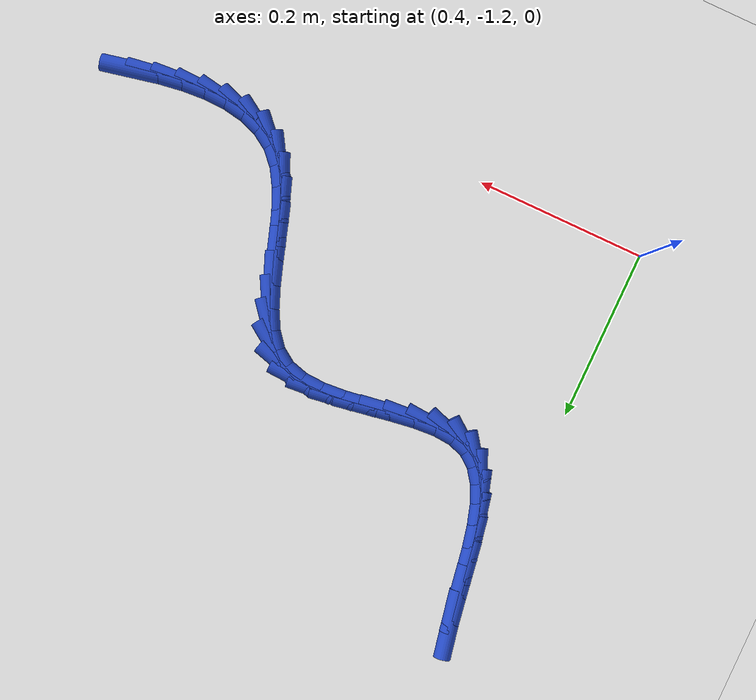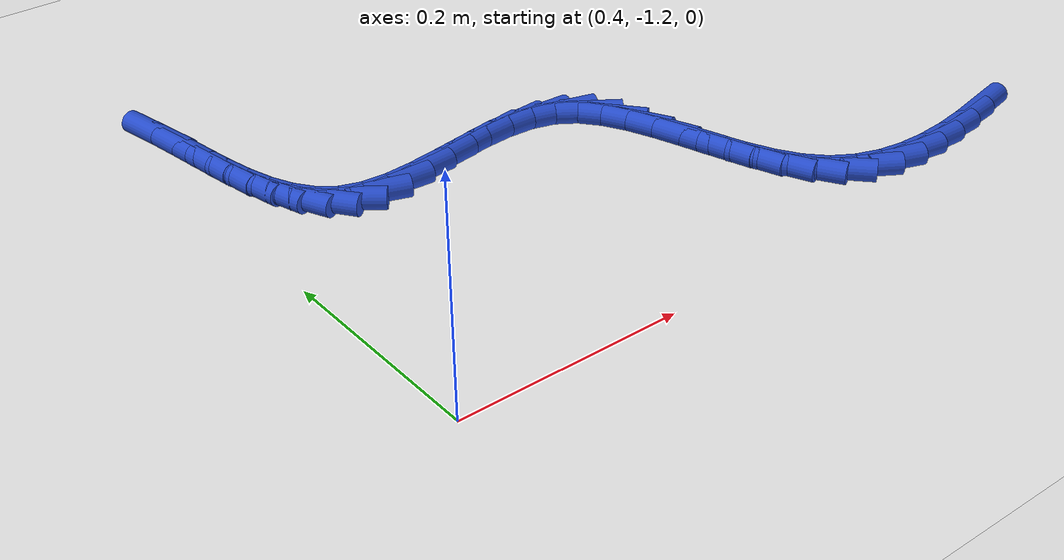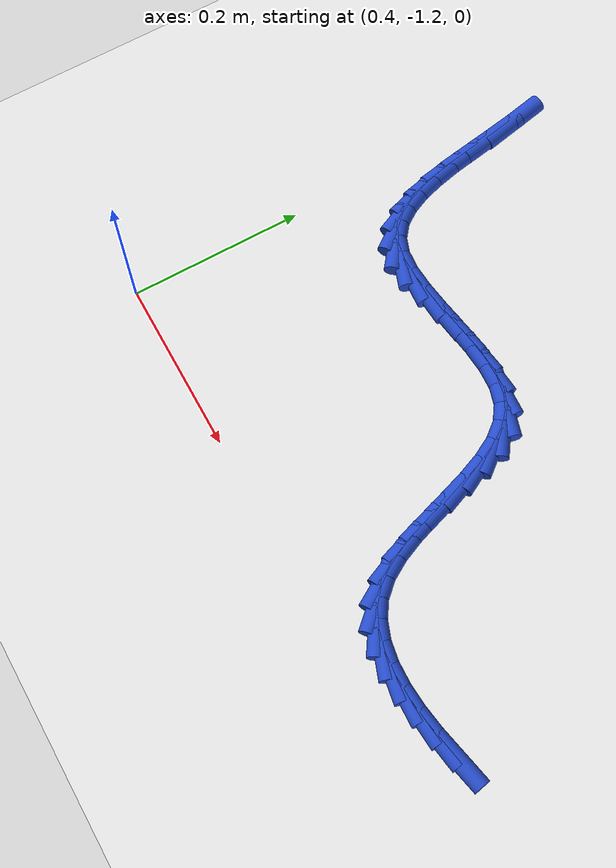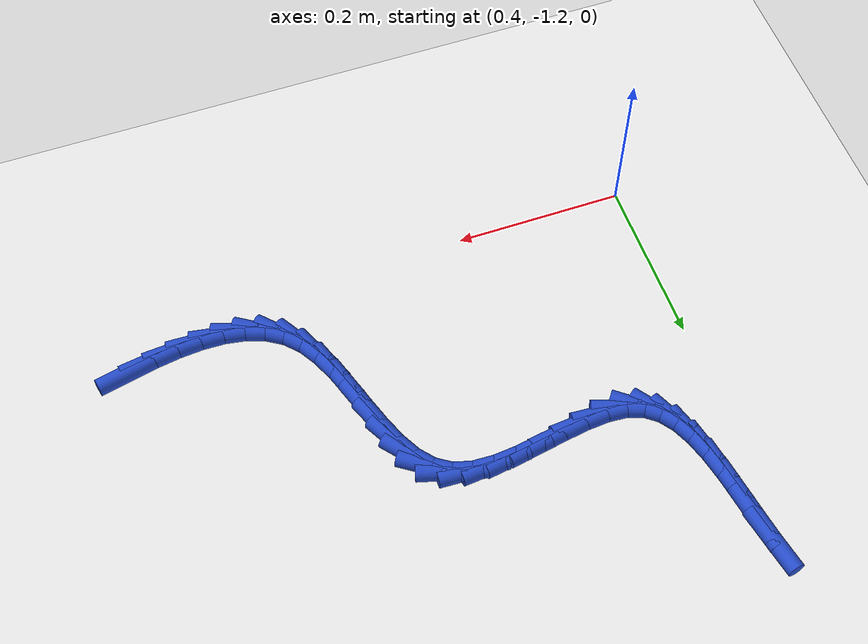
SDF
<sdf version="1.6">
 <world name="default">
  <model name="ground_plane">
   <static>1</static>
   <link name="link">
    <collision name="collision">
     <geometry><plane><normal>0 0 1</normal><size>100 100</size></plane></geometry>
     <surface><friction><ode><mu>100</mu><mu2>50</mu2></ode></friction></surface>
    </collision>
    <visual name="visual">
     <cast_shadows>0</cast_shadows>
     <geometry><plane><normal>0 0 1</normal><size>100 100</size></plane></geometry>
     <material>
      <script><uri>file://media/materials/scripts/gazebo.material</uri><name>Gazebo/WhiteGlow</name></script>
     </material>
    </visual>
   </link>
  </model>
  <model name="line">
   <link name="link_211">
    <pose>1.0106371908204403 -1.1491196145211096 0.01 0 1.57 0.2105865442659865</pose>
    <collision name="collision">
     <geometry><cylinder><radius>0.01</radius><length>0.08</length></cylinder></geometry>
    </collision>
    <visual name="visual">
     <material>
      <script><name>Gazebo/Blue</name><uri>file://media/materials/scripts/gazebo.material</uri></script>
     </material>
     <geometry><cylinder><radius>0.01</radius><length>0.08</length></cylinder></geometry>
    </visual>
   </link>
   <link name="link_212">
    <pose>0.9820281180655425 -1.155234967235178 0.01 0 1.57 0.1502433830271985</pose>
    <collision name="collision">
     <geometry><cylinder><radius>0.01</radius><length>0.08</length></cylinder></geometry>
    </collision>
    <visual name="visual">
     <material>
      <script><name>Gazebo/Blue</name><uri>file://media/materials/scripts/gazebo.material</uri></script>
     </material>
     <geometry><cylinder><radius>0.01</radius><length>0.08</length></cylinder></geometry>
    </visual>
   </link>
   <link name="link_213">
    <pose>0.9536405488422622 -1.159532395828081 0.01 0 1.57 0.07106828498928262</pose>
    <collision name="collision">
     <geometry><cylinder><radius>0.01</radius><length>0.08</length></cylinder></geometry>
    </collision>
    <visual name="visual">
     <material>
      <script><name>Gazebo/Blue</name><uri>file://media/materials/scripts/gazebo.material</uri></script>
     </material>
     <geometry><cylinder><radius>0.01</radius><length>0.08</length></cylinder></geometry>
    </visual>
   </link>
   <link name="link_214">
    <pose>0.925998610730409 -1.1615001749676097 0.01 0 1.57 -0.03311354392058998</pose>
    <collision name="collision">
     <geometry><cylinder><radius>0.01</radius><length>0.08</length></cylinder></geometry>
    </collision>
    <visual name="visual">
     <material>
      <script><name>Gazebo/Blue</name><uri>file://media/materials/scripts/gazebo.material</uri></script>
     </material>
     <geometry><cylinder><radius>0.01</radius><length>0.08</length></cylinder></geometry>
    </visual>
   </link>
   <link name="link_215">
    <pose>0.899626431309792 -1.1606265793215538 0.01 0 1.57 -0.17030288165418644</pose>
    <collision name="collision">
     <geometry><cylinder><radius>0.01</radius><length>0.08</length></cylinder></geometry>
    </collision>
    <visual name="visual">
     <material>
      <script><name>Gazebo/Blue</name><uri>file://media/materials/scripts/gazebo.material</uri></script>
     </material>
     <geometry><cylinder><radius>0.01</radius><length>0.08</length></cylinder></geometry>
    </visual>
   </link>
   <link name="link_216">
    <pose>0.8750481381602202 -1.1563998835577038 0.01 0 1.57 -0.3486469767944807</pose>
    <collision name="collision">
     <geometry><cylinder><radius>0.01</radius><length>0.08</length></cylinder></geometry>
    </collision>
    <visual name="visual">
     <material>
      <script><name>Gazebo/Blue</name><uri>file://media/materials/scripts/gazebo.material</uri></script>
     </material>
     <geometry><cylinder><radius>0.01</radius><length>0.08</length></cylinder></geometry>
    </visual>
   </link>
   <link name="link_217">
    <pose>0.8527878588615021 -1.1483083623438493 0.01 0 1.57 -0.5707900933685812</pose>
    <collision name="collision">
     <geometry><cylinder><radius>0.01</radius><length>0.08</length></cylinder></geometry>
    </collision>
    <visual name="visual">
     <material>
      <script><name>Gazebo/Blue</name><uri>file://media/materials/scripts/gazebo.material</uri></script>
     </material>
     <geometry><cylinder><radius>0.01</radius><length>0.08</length></cylinder></geometry>
    </visual>
   </link>
   <link name="link_218">
    <pose>0.8333697209934481 -1.1358402903477813 0.01 0 1.57 -0.8210833980769267</pose>
    <collision name="collision">
     <geometry><cylinder><radius>0.01</radius><length>0.08</length></cylinder></geometry>
    </collision>
    <visual name="visual">
     <material>
      <script><name>Gazebo/Blue</name><uri>file://media/materials/scripts/gazebo.material</uri></script>
     </material>
     <geometry><cylinder><radius>0.01</radius><length>0.08</length></cylinder></geometry>
    </visual>
   </link>
   <link name="link_219">
    <pose>0.8172688610228147 -1.1185472553007367 0.01 0 1.57 -1.0283760573147922</pose>
    <collision name="collision">
     <geometry><cylinder><radius>0.01</radius><length>0.08</length></cylinder></geometry>
    </collision>
    <visual name="visual">
     <material>
      <script><name>Gazebo/Blue</name><uri>file://media/materials/scripts/gazebo.material</uri></script>
     </material>
     <geometry><cylinder><radius>0.01</radius><length>0.08</length></cylinder></geometry>
    </visual>
   </link>
   <link name="link_220">
    <pose>0.8042336394577089 -1.0969200849208482 0.01 0 1.57 -1.160127191059161</pose>
    <collision name="collision">
     <geometry><cylinder><radius>0.01</radius><length>0.08</length></cylinder></geometry>
    </collision>
    <visual name="visual">
     <material>
      <script><name>Gazebo/Blue</name><uri>file://media/materials/scripts/gazebo.material</uri></script>
     </material>
     <geometry><cylinder><radius>0.01</radius><length>0.08</length></cylinder></geometry>
    </visual>
   </link>
   <link name="link_221">
    <pose>0.793456135936125 -1.0721685096787956 0.01 0 1.57 -1.233618984110951</pose>
    <collision name="collision">
     <geometry><cylinder><radius>0.01</radius><length>0.08</length></cylinder></geometry>
    </collision>
    <visual name="visual">
     <material>
      <script><name>Gazebo/Blue</name><uri>file://media/materials/scripts/gazebo.material</uri></script>
     </material>
     <geometry><cylinder><radius>0.01</radius><length>0.08</length></cylinder></geometry>
    </visual>
   </link>
   <link name="link_222">
    <pose>0.7841143038243747 -1.0455205159590237 0.01 0 1.57 -1.2615267652208146</pose>
    <collision name="collision">
     <geometry><cylinder><radius>0.01</radius><length>0.08</length></cylinder></geometry>
    </collision>
    <visual name="visual">
     <material>
      <script><name>Gazebo/Blue</name><uri>file://media/materials/scripts/gazebo.material</uri></script>
     </material>
     <geometry><cylinder><radius>0.01</radius><length>0.08</length></cylinder></geometry>
    </visual>
   </link>
   <link name="link_223">
    <pose>0.7753860964887707 -1.0182040901459786 0.01 0 1.57 -1.2484514703092118</pose>
    <collision name="collision">
     <geometry><cylinder><radius>0.01</radius><length>0.08</length></cylinder></geometry>
    </collision>
    <visual name="visual">
     <material>
      <script><name>Gazebo/Blue</name><uri>file://media/materials/scripts/gazebo.material</uri></script>
     </material>
     <geometry><cylinder><radius>0.01</radius><length>0.08</length></cylinder></geometry>
    </visual>
   </link>
   <link name="link_224">
    <pose>0.7664494672956247 -0.9914472186241059 0.01 0 1.57 -1.1910025663956747</pose>
    <collision name="collision">
     <geometry><cylinder><radius>0.01</radius><length>0.08</length></cylinder></geometry>
    </collision>
    <visual name="visual">
     <material>
      <script><name>Gazebo/Blue</name><uri>file://media/materials/scripts/gazebo.material</uri></script>
     </material>
     <geometry><cylinder><radius>0.01</radius><length>0.08</length></cylinder></geometry>
    </visual>
   </link>
   <link name="link_225">
    <pose>0.7564823696112495 -0.9664778877778516 0.01 0 1.57 -1.0769137946612617</pose>
    <collision name="collision">
     <geometry><cylinder><radius>0.01</radius><length>0.08</length></cylinder></geometry>
    </collision>
    <visual name="visual">
     <material>
      <script><name>Gazebo/Blue</name><uri>file://media/materials/scripts/gazebo.material</uri></script>
     </material>
     <geometry><cylinder><radius>0.01</radius><length>0.08</length></cylinder></geometry>
    </visual>
   </link>
   <link name="link_226">
    <pose>0.7446627568019566 -0.9445240839916605 0.01 0 1.57 -0.8849336698834042</pose>
    <collision name="collision">
     <geometry><cylinder><radius>0.01</radius><length>0.08</length></cylinder></geometry>
    </collision>
    <visual name="visual">
     <material>
      <script><name>Gazebo/Blue</name><uri>file://media/materials/scripts/gazebo.material</uri></script>
     </material>
     <geometry><cylinder><radius>0.01</radius><length>0.08</length></cylinder></geometry>
    </visual>
   </link>
   <link name="link_227">
    <pose>0.7301685822340588 -0.9268137936499797 0.01 0 1.57 -0.59743381380134</pose>
    <collision name="collision">
     <geometry><cylinder><radius>0.01</radius><length>0.08</length></cylinder></geometry>
    </collision>
    <visual name="visual">
     <material>
      <script><name>Gazebo/Blue</name><uri>file://media/materials/scripts/gazebo.material</uri></script>
     </material>
     <geometry><cylinder><radius>0.01</radius><length>0.08</length></cylinder></geometry>
    </visual>
   </link>
   <link name="link_228">
    <pose>0.7121785914218395 -0.9145738333172274 0.01 0 1.57 -0.2758506275479305</pose>
    <collision name="collision">
     <geometry><cylinder><radius>0.01</radius><length>0.08</length></cylinder></geometry>
    </collision>
    <visual name="visual">
     <material>
      <script><name>Gazebo/Blue</name><uri>file://media/materials/scripts/gazebo.material</uri></script>
     </material>
     <geometry><cylinder><radius>0.01</radius><length>0.08</length></cylinder></geometry>
    </visual>
   </link>
   <link name="link_229">
    <pose>0.6903099701192649 -0.908383544348696 0.01 0 1.57 -0.05133355496266097</pose>
    <collision name="collision">
     <geometry><cylinder><radius>0.01</radius><length>0.08</length></cylinder></geometry>
    </collision>
    <visual name="visual">
     <material>
      <script><name>Gazebo/Blue</name><uri>file://media/materials/scripts/gazebo.material</uri></script>
     </material>
     <geometry><cylinder><radius>0.01</radius><length>0.08</length></cylinder></geometry>
    </visual>
   </link>
   <link name="link_230">
    <pose>0.6653455320610968 -0.907100904154681 0.01 0 1.57 0.08104856240477121</pose>
    <collision name="collision">
     <geometry><cylinder><radius>0.01</radius><length>0.08</length></cylinder></geometry>
    </collision>
    <visual name="visual">
     <material>
      <script><name>Gazebo/Blue</name><uri>file://media/materials/scripts/gazebo.material</uri></script>
     </material>
     <geometry><cylinder><radius>0.01</radius><length>0.08</length></cylinder></geometry>
    </visual>
   </link>
   <link name="link_231">
    <pose>0.6382596544254131 -0.9093009950795247 0.01 0 1.57 0.14968530905457822</pose>
    <collision name="collision">
     <geometry><cylinder><radius>0.01</radius><length>0.08</length></cylinder></geometry>
    </collision>
    <visual name="visual">
     <material>
      <script><name>Gazebo/Blue</name><uri>file://media/materials/scripts/gazebo.material</uri></script>
     </material>
     <geometry><cylinder><radius>0.01</radius><length>0.08</length></cylinder></geometry>
    </visual>
   </link>
   <link name="link_232">
    <pose>0.6100267143902914 -0.9135588994675684 0.01 0 1.57 0.1705054111101277</pose>
    <collision name="collision">
     <geometry><cylinder><radius>0.01</radius><length>0.08</length></cylinder></geometry>
    </collision>
    <visual name="visual">
     <material>
      <script><name>Gazebo/Blue</name><uri>file://media/materials/scripts/gazebo.material</uri></script>
     </material>
     <geometry><cylinder><radius>0.01</radius><length>0.08</length></cylinder></geometry>
    </visual>
   </link>
   <link name="link_233">
    <pose>0.5816210891338099 -0.9184496996631542 0.01 0 1.57 0.14740825133236912</pose>
    <collision name="collision">
     <geometry><cylinder><radius>0.01</radius><length>0.08</length></cylinder></geometry>
    </collision>
    <visual name="visual">
     <material>
      <script><name>Gazebo/Blue</name><uri>file://media/materials/scripts/gazebo.material</uri></script>
     </material>
     <geometry><cylinder><radius>0.01</radius><length>0.08</length></cylinder></geometry>
    </visual>
   </link>
   <link name="link_234">
    <pose>0.5540171558340452 -0.9225484780106237 0.01 0 1.57 0.07273227711157854</pose>
    <collision name="collision">
     <geometry><cylinder><radius>0.01</radius><length>0.08</length></cylinder></geometry>
    </collision>
    <visual name="visual">
     <material>
      <script><name>Gazebo/Blue</name><uri>file://media/materials/scripts/gazebo.material</uri></script>
     </material>
     <geometry><cylinder><radius>0.01</radius><length>0.08</length></cylinder></geometry>
    </visual>
   </link>
   <link name="link_235">
    <pose>0.5281892916690774 -0.9244303168543188 0.01 0 1.57 -0.07611847297497897</pose>
    <collision name="collision">
     <geometry><cylinder><radius>0.01</radius><length>0.08</length></cylinder></geometry>
    </collision>
    <visual name="visual">
     <material>
      <script><name>Gazebo/Blue</name><uri>file://media/materials/scripts/gazebo.material</uri></script>
     </material>
     <geometry><cylinder><radius>0.01</radius><length>0.08</length></cylinder></geometry>
    </visual>
   </link>
   <link name="link_236">
    <pose>0.5051118738169832 -0.9226702985385812 0.01 0 1.57 -0.3365311992217344</pose>
    <collision name="collision">
     <geometry><cylinder><radius>0.01</radius><length>0.08</length></cylinder></geometry>
    </collision>
    <visual name="visual">
     <material>
      <script><name>Gazebo/Blue</name><uri>file://media/materials/scripts/gazebo.material</uri></script>
     </material>
     <geometry><cylinder><radius>0.01</radius><length>0.08</length></cylinder></geometry>
    </visual>
   </link>
   <link name="link_237">
    <pose>0.48572634918984525 -0.9158884899729126 0.01 0 1.57 -0.6646461387228294</pose>
    <collision name="collision">
     <geometry><cylinder><radius>0.01</radius><length>0.08</length></cylinder></geometry>
    </collision>
    <visual name="visual">
     <material>
      <script><name>Gazebo/Blue</name><uri>file://media/materials/scripts/gazebo.material</uri></script>
     </material>
     <geometry><cylinder><radius>0.01</radius><length>0.08</length></cylinder></geometry>
    </visual>
   </link>
   <link name="link_238">
    <pose>0.47021865610935587 -0.9037370245985061 0.01 0 1.57 -0.943854965446447</pose>
    <collision name="collision">
     <geometry><cylinder><radius>0.01</radius><length>0.08</length></cylinder></geometry>
    </collision>
    <visual name="visual">
     <material>
      <script><name>Gazebo/Blue</name><uri>file://media/materials/scripts/gazebo.material</uri></script>
     </material>
     <geometry><cylinder><radius>0.01</radius><length>0.08</length></cylinder></geometry>
    </visual>
   </link>
   <link name="link_239">
    <pose>0.4580202714477693 -0.8868986719357754 0.01 0 1.57 -1.1427038715775433</pose>
    <collision name="collision">
     <geometry><cylinder><radius>0.01</radius><length>0.08</length></cylinder></geometry>
    </collision>
    <visual name="visual">
     <material>
      <script><name>Gazebo/Blue</name><uri>file://media/materials/scripts/gazebo.material</uri></script>
     </material>
     <geometry><cylinder><radius>0.01</radius><length>0.08</length></cylinder></geometry>
    </visual>
   </link>
   <link name="link_240">
    <pose>0.44852995123966083 -0.8661008999796257 0.01 0 1.57 -1.2726875346993853</pose>
    <collision name="collision">
     <geometry><cylinder><radius>0.01</radius><length>0.08</length></cylinder></geometry>
    </collision>
    <visual name="visual">
     <material>
      <script><name>Gazebo/Blue</name><uri>file://media/materials/scripts/gazebo.material</uri></script>
     </material>
     <geometry><cylinder><radius>0.01</radius><length>0.08</length></cylinder></geometry>
    </visual>
   </link>
   <link name="link_241">
    <pose>0.4411464515196061 -0.8420711767249633 0.01 0 1.57 -1.3527942944097184</pose>
    <collision name="collision">
     <geometry><cylinder><radius>0.01</radius><length>0.08</length></cylinder></geometry>
    </collision>
    <visual name="visual">
     <material>
      <script><name>Gazebo/Blue</name><uri>file://media/materials/scripts/gazebo.material</uri></script>
     </material>
     <geometry><cylinder><radius>0.01</radius><length>0.08</length></cylinder></geometry>
    </visual>
   </link>
   <link name="link_242">
    <pose>0.43526852832218116 -0.8155369701666946 0.01 0 1.57 -1.3968952195644013</pose>
    <collision name="collision">
     <geometry><cylinder><radius>0.01</radius><length>0.08</length></cylinder></geometry>
    </collision>
    <visual name="visual">
     <material>
      <script><name>Gazebo/Blue</name><uri>file://media/materials/scripts/gazebo.material</uri></script>
     </material>
     <geometry><cylinder><radius>0.01</radius><length>0.08</length></cylinder></geometry>
    </visual>
   </link>
   <link name="link_243">
    <pose>0.43029493768196103 -0.7872257482997234 0.01 0 1.57 -1.4130451754197517</pose>
    <collision name="collision">
     <geometry><cylinder><radius>0.01</radius><length>0.08</length></cylinder></geometry>
    </collision>
    <visual name="visual">
     <material>
      <script><name>Gazebo/Blue</name><uri>file://media/materials/scripts/gazebo.material</uri></script>
     </material>
     <geometry><cylinder><radius>0.01</radius><length>0.08</length></cylinder></geometry>
    </visual>
   </link>
   <link name="link_244">
    <pose>0.4256244356335221 -0.7578649791189583 0.01 0 1.57 -1.4049424600559155</pose>
    <collision name="collision">
     <geometry><cylinder><radius>0.01</radius><length>0.08</length></cylinder></geometry>
    </collision>
    <visual name="visual">
     <material>
      <script><name>Gazebo/Blue</name><uri>file://media/materials/scripts/gazebo.material</uri></script>
     </material>
     <geometry><cylinder><radius>0.01</radius><length>0.08</length></cylinder></geometry>
    </visual>
   </link>
   <link name="link_245">
    <pose>0.4206557782114397 -0.728182130619304 0.01 0 1.57 -1.3729881444912044</pose>
    <collision name="collision">
     <geometry><cylinder><radius>0.01</radius><length>0.08</length></cylinder></geometry>
    </collision>
    <visual name="visual">
     <material>
      <script><name>Gazebo/Blue</name><uri>file://media/materials/scripts/gazebo.material</uri></script>
     </material>
     <geometry><cylinder><radius>0.01</radius><length>0.08</length></cylinder></geometry>
    </visual>
   </link>
  </model>
 </world>
</sdf>
